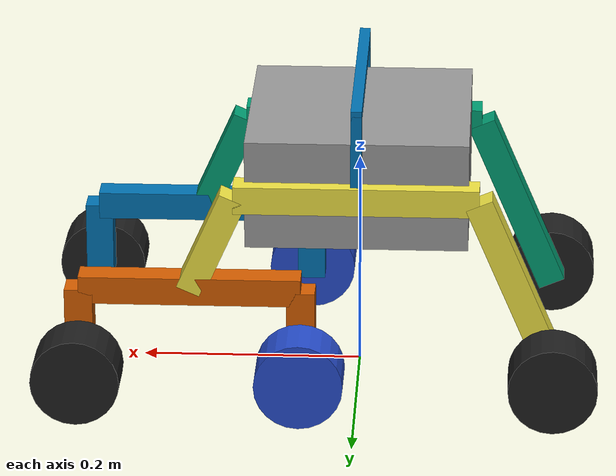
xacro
<?xml version='1.0'?>

<robot name="mark2" xmlns:xacro="http://www.ros.org/wiki/xacro">

    <link name="world"></link>

    <joint name="joint_n" type="floating">
        <origin xyz="0.0 0.0 0.2" rpy="0.0 0.0 0.0"/>
        <parent link="world"/>
        <child link="chassis"/>
    </joint>

    <link name="chassis">
        <inertial>
            <mass value="3.065"/>
            <origin xyz="0.0 0.0 0.0" rpy=" 0 0 0"/>
            <inertia
                ixx="199.731" ixy="2.097" ixz="0.161"
                iyy="182.087" iyz="0.079"
                izz="267.088"
            />
        </inertial>

        <collision name='chassis_collision'>
            <origin xyz="0.0 0.0 0.0" rpy=" 0 0 0"/>
            <geometry>
            <box size="0.2000 0.2000 0.1000"/>
            </geometry>
        </collision>

        <visual name='chassis_visual'>
            <origin xyz="0.0 0.0 0.0" rpy=" 0 0 0"/>
            <geometry>
            <box size="0.2000 0.2000 0.1000"/>
            </geometry>
        </visual>
    </link>

    <joint name="joint_1" type="revolute">
        <origin xyz="0.0 -0.1012 0.0" rpy="0.0 0.0 0.0"/>
        <parent link="chassis"/>
        <child link="right_leg_rocker"/>
        <axis xyz="0.0 1.0 0.0"/>
        <limit lower="-1.0" upper="1.0" effort="1.0" velocity="1.0"/>
    </joint>

    <link name="right_leg_rocker">

        <!-- visual /-->
        <visual name="r_up_part_visual">
            <geometry>
                <box size="0.2195 0.0254 0.0254"/>
            </geometry>
            <origin rpy="0 0 0" xyz="0.0 0.0 0.0"/>
        </visual>
        <visual name="r_down_part_visual">
            <geometry>
                <box size="0.173 0.0254 0.0254"/>
            </geometry>
            <origin rpy="0 -1.1659 0" xyz="-0.1436 0.0 -0.0807"/>
        </visual>
        <visual name="r_front_part_visual">
            <geometry>
                <box size="0.09741 0.0254 0.0254"/>
            </geometry>
            <origin rpy="0 1.1522 0" xyz="0.1295 0.0 -0.0445"/>
        </visual>

        <!-- collision /-->
        <collision name="r_up_part_collision">
            <geometry>
                <box size="0.2195 0.0254 0.0254"/>
            </geometry>
            <origin rpy="0 0 0" xyz="0.0 0.0 0.0"/>
        </collision>
        <collision name="r_down_part_collision">
            <geometry>
                <box size="0.173 0.0254 0.0254"/>
            </geometry>
            <origin rpy="0 -1.1659 0" xyz="-0.1436 0.0 -0.0807"/>
        </collision>
        <collision name="r_front_part_collision">
            <geometry>
                <box size="0.09741 0.0254 0.0254"/>
            </geometry>
            <origin rpy="0 1.1522 0" xyz="0.1295 0.0 -0.0445"/>
        </collision>

        <inertial>
            <mass value="0.974"/>
            <origin xyz="0.0 0.0 0.0" rpy=" 0 0 0"/>
            <inertia
                ixx="2555.119" ixy="60.204" ixz="-2683.738"
                iyy="15204.978" iyz="16.365"
                izz="12798.286"
            />
        </inertial>

    </link>

    <joint name="joint_2" type="revolute">
        <origin xyz="0.0 0.1012 0.0" rpy="0.0 0.0 0.0"/>
        <parent link="chassis"/>
        <child link="left_leg_rocker"/>
        <axis xyz="0.0 1.0 0.0"/>
        <limit lower="-1.0" upper="1.0" effort="1.0" velocity="1.0"/>
    </joint>

    <link name="left_leg_rocker">

        <!-- visual /-->
        <visual name="l_up_part_visual">
            <geometry>
                <box size="0.2195 0.0254 0.0254"/>
            </geometry>
            <origin rpy="0 0 0" xyz="0.0 0.0 0.0"/>
        </visual>
        <visual name="l_down_part_visual">
            <geometry>
                <box size="0.173 0.0254 0.0254"/>
            </geometry>
            <origin rpy="0 -1.1659 0" xyz="-0.1436 0.0 -0.0807"/>
        </visual>
        <visual name="l_front_part_visual">
            <geometry>
                <box size="0.09741 0.0254 0.0254"/>
            </geometry>
            <origin rpy="0 1.1522 0" xyz="0.1295 0.0 -0.0445"/>
        </visual>

        <!-- collision /-->
        <collision name="l_up_part_collision">
            <geometry>
                <box size="0.2195 0.0254 0.0254"/>
            </geometry>
            <origin rpy="0 0 0" xyz="0.0 0.0 0.0"/>
        </collision>
        <collision name="l_down_part_collision">
            <geometry>
                <box size="0.173 0.0254 0.0254"/>
            </geometry>
            <origin rpy="0 -1.1659 0" xyz="-0.1436 0.0 -0.0807"/>
        </collision>
        <collision name="l_front_part_collision">
            <geometry>
                <box size="0.09741 0.0254 0.0254"/>
            </geometry>
            <origin rpy="0 1.1522 0" xyz="0.1295 0.0 -0.0445"/>
        </collision>

        <inertial>
            <mass value="0.974"/>
            <origin xyz="0.0 0.0 0.0" rpy=" 0 0 0"/>
            <inertia
                ixx="2555.119" ixy="60.204" ixz="-2683.738"
                iyy="15204.978" iyz="16.365"
                izz="12798.286"
            />
        </inertial>

    </link>

    <joint name="joint_3" type="revolute">
        <origin rpy="0 0 0" xyz="0.1493 0.0 -0.089"/>
        <parent link="right_leg_rocker"/>
        <child link="right_leg_boogie"/>
        <axis xyz="0.0 1.0 0.0"/>
        <limit lower="-1.0" upper="1.0" effort="1.0" velocity="1.0"/>
    </joint>

    <link name="right_leg_boogie">

        <!-- visual /-->
        <visual name="r_base_visual">
            <geometry>
                <box size="0.200 0.0254 0.0254"/>
            </geometry>
            <origin rpy="0 0 0" xyz="0.0 0.0 0.0"/>
        </visual>
        <visual name="r_front_visual">
            <geometry>
                <box size="0.0254 0.0254 0.0695"/>
            </geometry>
            <origin rpy="0 0 0" xyz="0.1 0.0 -0.03475"/>
        </visual>
        <visual name="r_back_visual">
            <geometry>
                <box size="0.0254 0.0254 0.0695"/>
            </geometry>
            <origin rpy="0 0 0" xyz="-0.1 0.0 -0.03475"/>
        </visual>

        <!-- collision /-->

        <collision name="r_base_collision">
            <geometry>
                <box size="0.200 0.0254 0.0254"/>
            </geometry>
            <origin rpy="0 0 0" xyz="0.0 0.0 0.0"/>
        </collision>
        <collision name="r_front_collision">
            <geometry>
                <box size="0.0254 0.0254 0.0695"/>
            </geometry>
            <origin rpy="0 0 0" xyz="0.1 0.0 -0.03475"/>
        </collision>
        <collision name="r_back_collision">
            <geometry>
                <box size="0.0254 0.0254 0.0695"/>
            </geometry>
            <origin rpy="0 0 0" xyz="-0.1 0.0 -0.03475"/>
        </collision>

        <inertial>
        <mass value="0.803"/>
        <origin rpy="0 0 0" xyz="0.0 0.0 0.0"/>
        <inertia
            ixx="664.519" ixy="-9.047" ixz="224.365"
                iyy="4936.122" iyz="26.955"
                izz="4390.159"
        />
        </inertial>

    </link>

    <joint name="joint_4" type="revolute">
        <origin rpy="0 0 0" xyz="0.1493 0.0 -0.089"/>
        <parent link="left_leg_rocker"/>
        <child link="left_leg_boogie"/>
        <axis xyz="0.0 1.0 0.0"/>
        <limit lower="-1.0" upper="1.0" effort="1.0" velocity="1.0"/>
    </joint>

    <link name="left_leg_boogie">

        <!-- visual /-->
        <visual name="l_base_visual">
            <geometry>
                <box size="0.200 0.0254 0.0254"/>
            </geometry>
            <origin rpy="0 0 0" xyz="0.0 0.0 0.0"/>
        </visual>
        <visual name="l_front_visual">
            <geometry>
                <box size="0.0254 0.0254 0.0695"/>
            </geometry>
            <origin rpy="0 0 0" xyz="0.1 0.0 -0.03475"/>
        </visual>
        <visual name="l_back_visual">
            <geometry>
                <box size="0.0254 0.0254 0.0695"/>
            </geometry>
            <origin rpy="0 0 0" xyz="-0.1 0.0 -0.03475"/>
        </visual>

        <!-- collision /-->

        <collision name="l_base_collision">
            <geometry>
                <box size="0.200 0.0254 0.0254"/>
            </geometry>
            <origin rpy="0 0 0" xyz="0.0 0.0 0.0"/>
        </collision>
        <collision name="l_front_collision">
            <geometry>
                <box size="0.0254 0.0254 0.0695"/>
            </geometry>
            <origin rpy="0 0 0" xyz="0.1 0.0 -0.03475"/>
        </collision>
        <collision name="l_back_collision">
            <geometry>
                <box size="0.0254 0.0254 0.0695"/>
            </geometry>
            <origin rpy="0 0 0" xyz="-0.1 0.0 -0.03475"/>
        </collision>

        <inertial>
            <mass value="0.803"/>
            <origin rpy="0 0 0" xyz="0.0 0.0 0.0"/>
            <inertia
                ixx="664.519" ixy="-9.047" ixz="224.365"
                iyy="4936.122" iyz="26.955"
                izz="4390.159"
            />
        </inertial>

    </link>

    <joint name="joint_5" type="continuous">
        <origin xyz="0.1 -0.0377 -0.0695" rpy="0.0 1.5707 0.0"/>
        <parent link="right_leg_boogie"/>
        <child link="right_wheel_front"/>
        <axis xyz="0.0 1.0 0.0"/>
        <limit effort="100.0" velocity="15.0"/>
    </joint>

    <link name="right_wheel_front">

        <visual name="right_wheel_front_visual">
            <origin rpy="1.5707 0.0 0.0" xyz="0.0 0.0 0.0"/>
            <geometry>
                <cylinder length="0.0500" radius="0.0400"/>
            </geometry>
        </visual>

        <collision name="right_wheel_front_collision">
            <origin rpy="1.5707 0.0 0.0" xyz="0.0 0.0 0.0"/>
            <geometry>
                <cylinder length="0.0500" radius="0.0400"/>
            </geometry>
        </collision>
        <inertial>
            <mass value="0.514"/>
            <origin xyz="0.2990 0.1954 0.2118" rpy=" 0 0 0"/>
            <inertia
                ixx="3.125" ixy="0" ixz="0"
                iyy="4.509" iyz="0"
                izz="3.125"
            />
        </inertial>

    </link>

    <joint name="joint_6" type="continuous">
        <origin xyz="-0.1 -0.0377 -0.0695" rpy="0.0 1.5707 0.0"/>
        <parent link="right_leg_boogie"/>
        <child link="right_wheel_medium"/>
        <axis xyz="0.0 1.0 0.0"/>
        <limit effort="100.0" velocity="15.0"/>
    </joint>

    <link name="right_wheel_medium">

        <visual name="right_wheel_front_visual">
            <origin rpy="1.5707 0.0 0.0" xyz="0.0 0.0 0.0"/>
            <geometry>
                <cylinder length="0.0500" radius="0.0400"/>
            </geometry>
        </visual>

        <collision name="right_wheel_front_collision">
            <origin rpy="1.5707 0.0 0.0" xyz="0.0 0.0 0.0"/>
            <geometry>
                <cylinder length="0.0500" radius="0.0400"/>
            </geometry>
        </collision>
        <inertial>
            <mass value="0.514"/>
            <origin xyz="0.2990 0.1954 0.2118" rpy=" 0 0 0"/>
            <inertia
                ixx="3.125" ixy="0" ixz="0"
                iyy="4.509" iyz="0"
                izz="3.125"
            />
        </inertial>

    </link>

    <joint name="joint_7" type="continuous">
        <origin xyz="-0.1776 -0.0377 -0.1586" rpy="0.0 1.5707 0.0"/>
        <parent link="right_leg_rocker"/>
        <child link="right_wheel_back"/>
        <axis xyz="0.0 1.0 0.0"/>
        <limit effort="100.0" velocity="15.0"/>
    </joint>

    <link name="right_wheel_back">

        <visual name="right_wheel_front_visual">
            <origin rpy="1.5707 0.0 0.0" xyz="0.0 0.0 0.0"/>
            <geometry>
                <cylinder length="0.0500" radius="0.0400"/>
            </geometry>
        </visual>

        <collision name="right_wheel_front_collision">
            <origin rpy="1.5707 0.0 0.0" xyz="0.0 0.0 0.0"/>
            <geometry>
                <cylinder length="0.0500" radius="0.0400"/>
            </geometry>
        </collision>
        <inertial>
            <mass value="0.514"/>
            <origin xyz="0.2990 0.1954 0.2118" rpy=" 0 0 0"/>
            <inertia
                ixx="3.125" ixy="0" ixz="0"
                iyy="4.509" iyz="0"
                izz="3.125"
            />
        </inertial>

    </link>

    <joint name="joint_8" type="continuous">
        <origin xyz="0.1 0.0377 -0.0695" rpy="0.0 1.5707 0.0"/>
        <parent link="left_leg_boogie"/>
        <child link="left_wheel_front"/>
        <axis xyz="0.0 1.0 0.0"/>
        <limit effort="100.0" velocity="15.0"/>
    </joint>

    <link name="left_wheel_front">

        <visual name="left_wheel_front_visual">
            <origin rpy="1.5707 0.0 0.0" xyz="0.0 0.0 0.0"/>
            <geometry>
                <cylinder length="0.0500" radius="0.0400"/>
            </geometry>
        </visual>

        <collision name="left_wheel_front_collision">
            <origin rpy="1.5707 0.0 0.0" xyz="0.0 0.0 0.0"/>
            <geometry>
                <cylinder length="0.0500" radius="0.0400"/>
            </geometry>
        </collision>
        <inertial>
            <mass value="0.514"/>
            <origin xyz="0.2990 0.1954 0.2118" rpy=" 0 0 0"/>
            <inertia
                ixx="3.125" ixy="0" ixz="0"
                iyy="4.509" iyz="0"
                izz="3.125"
            />
        </inertial>

    </link>

    <joint name="joint_9" type="continuous">
        <origin xyz="-0.1 0.0377 -0.0695" rpy="0.0 1.5707 0.0"/>
        <parent link="left_leg_boogie"/>
        <child link="left_wheel_medium"/>
        <axis xyz="0.0 1.0 0.0"/>
        <limit effort="100.0" velocity="15.0"/>
    </joint>

    <link name="left_wheel_medium">

        <visual name="right_wheel_front_visual">
            <origin rpy="1.5707 0.0 0.0" xyz="0.0 0.0 0.0"/>
            <geometry>
                <cylinder length="0.0500" radius="0.0400"/>
            </geometry>
        </visual>

        <collision name="right_wheel_front_collision">
            <origin rpy="1.5707 0.0 0.0" xyz="0.0 0.0 0.0"/>
            <geometry>
                <cylinder length="0.0500" radius="0.0400"/>
            </geometry>
        </collision>
        <inertial>
            <mass value="0.514"/>
            <origin xyz="0.2990 0.1954 0.2118" rpy=" 0 0 0"/>
            <inertia
                ixx="3.125" ixy="0" ixz="0"
                iyy="4.509" iyz="0"
                izz="3.125"
            />
        </inertial>

    </link>

    <joint name="joint_10" type="continuous">
        <origin xyz="-0.1776 0.0377 -0.1586" rpy="0.0 1.5707 0.0"/>
        <parent link="left_leg_rocker"/>
        <child link="left_wheel_back"/>
        <axis xyz="0.0 1.0 0.0"/>
        <limit effort="100.0" velocity="15.0"/>
    </joint>

    <link name="left_wheel_back">

        <visual name="right_wheel_front_visual">
            <origin rpy="1.5707 0.0 0.0" xyz="0.0 0.0 0.0"/>
            <geometry>
                <cylinder length="0.0500" radius="0.0400"/>
            </geometry>
        </visual>

        <collision name="right_wheel_front_collision">
            <origin rpy="1.5707 0.0 0.0" xyz="0.0 0.0 0.0"/>
            <geometry>
                <cylinder length="0.0500" radius="0.0400"/>
            </geometry>
        </collision>
        <inertial>
            <mass value="0.514"/>
            <origin xyz="0.2990 0.1954 0.2118" rpy=" 0 0 0"/>
            <inertia
                ixx="3.125" ixy="0" ixz="0"
                iyy="4.509" iyz="0"
                izz="3.125"
            />
        </inertial>

    </link>

    <!-- differential -->

    <joint name="joint_11" type="fixed">
        <origin xyz="0.0 0.1012 0.08" rpy="0.0 0.0 0.0"/>
        <parent link="right_leg_rocker"/>
        <child link="diff"/>
    </joint>

    <link name="diff">

        <visual name="">
            <origin xyz="0.0 0.0 0.0" rpy="0.0 0.0 0.0"/>
            <geometry>
                <box size="0.01 0.22 0.01"/>
            </geometry>
        </visual>

        <visual name="">
            <origin xyz="0.0 0.105 -0.04" rpy="0.0 0.0 0.0"/>
            <geometry>
                <box size="0.01 0.01 0.08"/>
            </geometry>
        </visual>

        <visual name="">
            <origin xyz="0.0 -0.105 -0.04" rpy="0.0 0.0 0.0"/>
            <geometry>
                <box size="0.01 0.01 0.08"/>
            </geometry>
        </visual>

        <collision>
            <origin xyz="0.0 0.0 0.0" rpy="0.0 0.0 0.0"/>
            <geometry>
                <box size="0.01 0.22 0.01"/>
            </geometry>
        </collision>

        <collision>
            <origin xyz="0.0 0.105 -0.04" rpy="0.0 0.0 0.0"/>
            <geometry>
                <box size="0.01 0.01 0.08"/>
            </geometry>
        </collision>

        <collision>
            <origin xyz="0.0 -0.105 -0.04" rpy="0.0 0.0 0.0"/>
            <geometry>
                <box size="0.01 0.01 0.08"/>
            </geometry>
        </collision>

        <inertial>
            <origin xyz="0.0 0.0 0.0" rpy="0.0 0.0 0.0"/>
            <mass value="0.253"/>
            <inertia
                ixx="121.495" ixy="0.026" ixz="-8.296"
                iyy="1504.113" iyz="0.257"
                izz="1498.187"
            />
        </inertial>
    </link>

    <!-- Transmission -->

    <transmission name="tran1">
        <type>transmission_interface/SimpleTransmission</type>
        <joint name="joint_5">
            <hardwareInterface>hardware_interface/VelocityJointInterface</hardwareInterface>
        </joint>
        <actuator name="Wheel_RF">
            <mechanicalReduction>1</mechanicalReduction>
        </actuator>
    </transmission>

    <transmission name="tran2">
        <type>transmission_interface/SimpleTransmission</type>
        <joint name="joint_6">
            <hardwareInterface>hardware_interface/VelocityJointInterface</hardwareInterface>
        </joint>
        <actuator name="Wheel_RM">
            <mechanicalReduction>1</mechanicalReduction>
        </actuator>
    </transmission>

    <transmission name="tran3">
        <type>transmission_interface/SimpleTransmission</type>
        <joint name="joint_7">
            <hardwareInterface>hardware_interface/VelocityJointInterface</hardwareInterface>
        </joint>
        <actuator name="Wheel_RB">
            <mechanicalReduction>1</mechanicalReduction>
        </actuator>
    </transmission>

    <transmission name="tran4">
        <type>transmission_interface/SimpleTransmission</type>
        <joint name="joint_8">
            <hardwareInterface>hardware_interface/VelocityJointInterface</hardwareInterface>
        </joint>
        <actuator name="Wheel_LF">
            <mechanicalReduction>1</mechanicalReduction>
        </actuator>
    </transmission>

    <transmission name="tran5">
        <type>transmission_interface/SimpleTransmission</type>
        <joint name="joint_9">
            <hardwareInterface>hardware_interface/VelocityJointInterface</hardwareInterface>
        </joint>
        <actuator name="Wheel_LM">
            <mechanicalReduction>1</mechanicalReduction>
        </actuator>
    </transmission>

    <transmission name="tran6">
        <type>transmission_interface/SimpleTransmission</type>
        <joint name="joint_10">
            <hardwareInterface>hardware_interface/VelocityJointInterface</hardwareInterface>
        </joint>
        <actuator name="Wheel_LB">
            <mechanicalReduction>1</mechanicalReduction>
        </actuator>
    </transmission>

    <!-- Plugins -->

    <gazebo>
        <plugin name="gazebo_ros_control" filename="libgazebo_ros_control.so">
            <robotNamespace>/</robotNamespace>
        </plugin>
    </gazebo>

    <gazebo reference="chassis">
        <material>Gazebo/Gray</material>
    </gazebo>

    <gazebo reference="right_wheel_front">
        <material>Gazebo/Black</material>
    </gazebo>

    <gazebo reference="right_wheel_medium">
        <material>Gazebo/Blue</material>
    </gazebo>

    <gazebo reference="right_wheel_back">
        <material>Gazebo/Black</material>
    </gazebo>

    <gazebo reference="left_wheel_front">
        <material>Gazebo/Black</material>
    </gazebo>

    <gazebo reference="left_wheel_medium">
        <material>Gazebo/Blue</material>
    </gazebo>

    <gazebo reference="left_wheel_back">
        <material>Gazebo/Black</material>
    </gazebo>

</robot>
